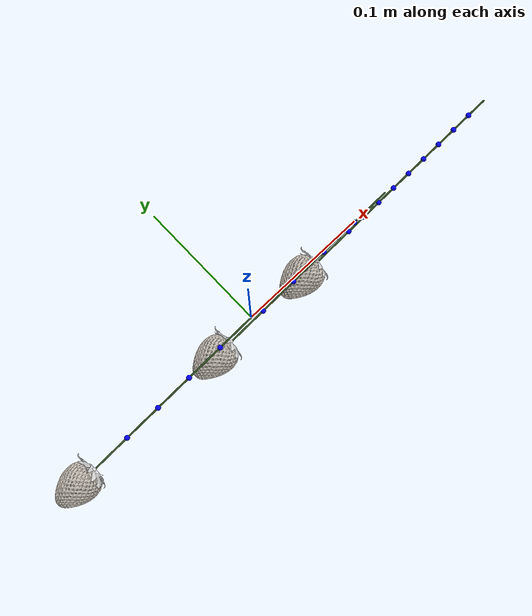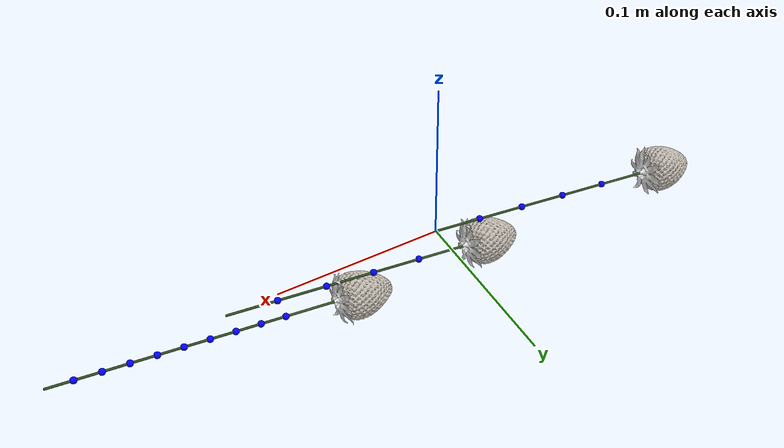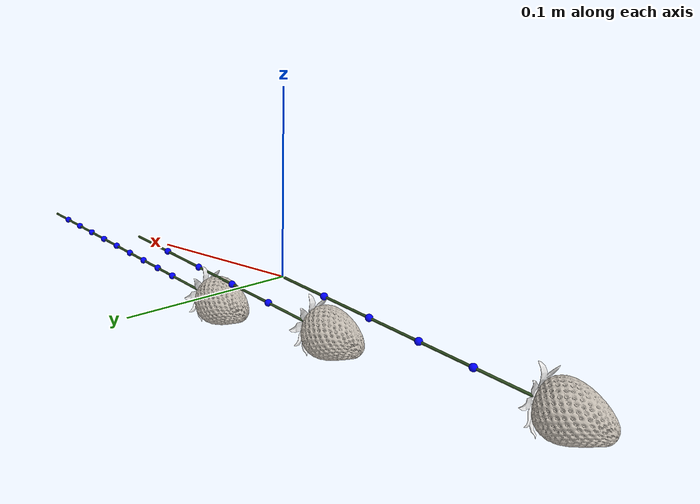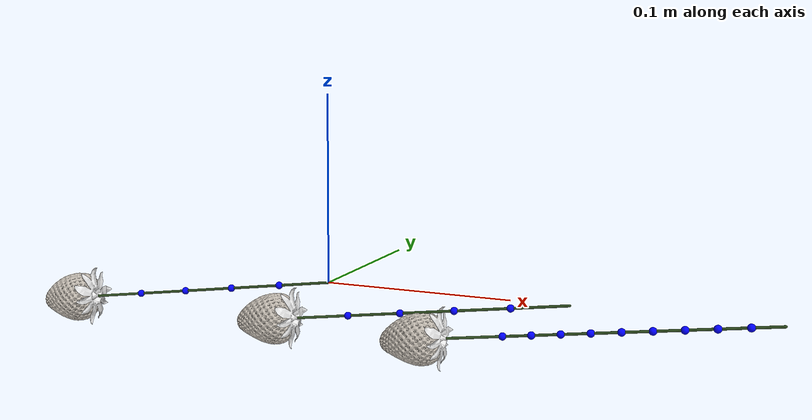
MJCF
<mujoco model="strawb_vine">
  <compiler angle="radian" meshdir="assets/"/>

  <asset>
    <texture name="strawb_leaves" type="2d" file="textures/strawberry_leaves_512.png"/>
    <texture name="strawb_texture" type="2d" file="textures/strawberry_fixed_512.png"/>
    <material name="strawberry_material" texture="strawb_texture" shininess="0.01" specular="0.01" reflectance="0.05" texuniform="true"/>
    <material name="strawberry_leaves" texture="strawb_leaves" shininess="0.1" specular="0.1" reflectance="0.5" texuniform="true"/>
    <mesh name="strawberry" file="strawberry_origin.obj" scale="1.0 1.0 1.0"/>
    <mesh name="strawberry_leaves" file="strawberry_leaves_origin.obj" scale="1.0 1.0 1.0"/>
    <mesh name="strawberry_collision" file="strawberry_collision_origin.obj" scale="1.0 1.0 1.0"/>
  </asset>

  <default>
    <default class="vine_joint">
      <joint type="ball" stiffness="0.02" armature="0.0001" damping="0.01" actuatorfrclimited="false" group="3"/>
    </default>
    <default class="vine_joint_old">
      <joint type="ball" actuatorfrclimited="false" group="3"/>
    </default>
    <default class="vine_capsule">
      <geom type="capsule" mass="0.0001"
            solref="0.001 1" solimp="0.97 0.995 0.0005 0.5 2"
            rgba="0.18 0.3 0.12 1"/>
    </default>

  </default>

  <worldbody>
    <body name="vine1" pos="0.0 0 0" euler="0 3.0 0">
      <body name="aB_first">
        <geom class="vine_capsule" name="aG0" size="0.0007 0.015" pos="0.015 0 0" quat="0.707107 0 -0.707107 0"/>
        <site name="aS_first" pos="0 0 0" group="3"/>
        <body name="aB_1" pos="0.03 0 0">
          <joint class="vine_joint_old" name="aJ_1" pos="0 0 0"/>
          <site name="joint_1" pos="0 0 0" rgba = "0 0 1 1" size="0.002"/>
          <geom class="vine_capsule" name="aG1" size="0.0007 0.015" pos="0.015 0 0" quat="0.707107 0 -0.707107 0"/>
          <body name="aB_2" pos="0.03 0 0">
            <joint class="vine_joint_old" name="aJ_2" pos="0 0 0"/>
            <site name="joint_2" pos="0 0 0" rgba = "0 0 1 1" size="0.002"/>
            <geom class="vine_capsule" name="aG2" size="0.0007 0.015" pos="0.015 0 0" quat="0.707107 0 -0.707107 0"/>
            <body name="aB_last" pos="0.03 0 0">
              <joint class="vine_joint_old" name="aJ_last" pos="0 0 0"/>
              <site name="joint_last" pos="0 0 0" rgba = "0 0 1 1" size="0.002"/>
              <geom class="vine_capsule" name="aG3" size="0.0007 0.015" pos="0.015 0 0" quat="0.707107 0 -0.707107 0"/>
              <site name="aS_last" pos="0.03 0 0" group="3"/>
              <body name="stem1" pos="0.03 0 0">
                <joint class="vine_joint_old" name="stem1" pos="0 0 0"/>
                <site name="joint_stem1" pos="0 0 0" rgba = "0 0 1 1" size="0.002"/>
                <geom name="stem1" type="capsule" size="0.0007 0.015" pos="0.015 0 0" quat="0.707107 0 -0.707107 0" rgba="0.208 0.337 0.149 1"/>
                <site name="stem1" pos="0.0001 0.054 -0.0004" size="0.0012" rgba="0 0 1 1" group="3"/>
                <body name="block1" pos="0.03 0 0" euler="0 0 1.57">
                  <geom name="block1" type="mesh" mesh="strawberry_collision" density="400" group="3"/>
                  <geom name="block1_visual" type="mesh" mesh="strawberry" material="strawberry_material" contype="0" conaffinity="0"/>
                  <geom name="leaves1" type="mesh" mesh="strawberry_leaves" rgba="0.9 0.9 0.9 1.0" material="strawberry_leaves" contype="0" conaffinity="0"/>
                </body>
              </body>
            </body>
          </body>
        </body>
      </body>
    </body>

    <body name="vine2" pos="0.13 0 0" euler="0 3.0 0">
      <body name="bB_first">
        <geom class="vine_capsule" name="bG0" size="0.0007 0.015" pos="0.015 0 0" quat="0.707107 0 -0.707107 0"/>
        <site name="bS_first" pos="0 0 0" group="3"/>
        <body name="bB_1" pos="0.03 0 0">
          <joint class="vine_joint" name="bJ_1" pos="0 0 0"/>
          <site name="joint_2_1" pos="0 0 0" rgba = "0 0 1 1" size="0.002"/>
          <geom class="vine_capsule" name="bG1" size="0.0007 0.015" pos="0.015 0 0" quat="0.707107 0 -0.707107 0"/>
          <body name="bB_2" pos="0.03 0 0">
            <joint class="vine_joint" name="bJ_2" pos="0 0 0"/>
            <site name="joint_2_2" pos="0 0 0" rgba = "0 0 1 1" size="0.002"/>
            <geom class="vine_capsule" name="bG2" size="0.0007 0.015" pos="0.015 0 0" quat="0.707107 0 -0.707107 0"/>
            <body name="bB_last" pos="0.03 0 0">
              <joint class="vine_joint" name="bJ_last" pos="0 0 0"/>
              <site name="joint_2_last" pos="0 0 0" rgba = "0 0 1 1" size="0.002"/>
              <geom class="vine_capsule" name="bG3" size="0.0007 0.015" pos="0.015 0 0" quat="0.707107 0 -0.707107 0"/>
              <site name="bS_last" pos="0.03 0 0" group="3"/>
              <body name="stem2" pos="0.03 0 0">
                <joint class="vine_joint" name="stem2" pos="0 0 0"/>
                <site name="joint_stem2" pos="0 0 0" rgba = "0 0 1 1" size="0.002"/>
                <geom name="stem2" type="capsule" size="0.0007 0.015" pos="0.015 0 0" quat="0.707107 0 -0.707107 0" rgba="0.208 0.337 0.149 1"/>
                <site name="stem2" pos="0.0001 0.054 -0.0004" size="0.0012" rgba="0 0 1 1" group="3"/>
                <body name="block2" pos="0.03 0 0" euler="0 0 1.57">
                  <geom name="block2" type="mesh" mesh="strawberry_collision" density="400" group="3"/>
                  <geom name="block2_visual" type="mesh" mesh="strawberry" material="strawberry_material" contype="0" conaffinity="0"/>
                  <geom name="leaves2" type="mesh" mesh="strawberry_leaves" rgba="0.9 0.9 0.9 1.0" material="strawberry_leaves" contype="0" conaffinity="0"/>
                </body>
              </body>
            </body>
          </body>
        </body>
      </body>
    </body>

    <body name="vine3" pos="0.23 0 0" euler="0 3.0 0">
      <body name="cB_first">
        <!-- radius unchanged (0.0007), half-length halved (0.0075) -->
        <geom class="vine_capsule" name="cG0" size="0.0007 0.0075" pos="0.0075 0 0" quat="0.707107 0 -0.707107 0"/>
        <site name="cS_first" pos="0 0 0" group="3"/>

        <!-- Link 1 -->
        <body name="cB_1" pos="0.015 0 0">
          <joint class="vine_joint" name="cJ_1" pos="0 0 0"/>
          <site name="joint_3_1" pos="0 0 0" rgba="0 0 1 1" size="0.002"/>
          <geom class="vine_capsule" name="cG1" size="0.0007 0.0075" pos="0.0075 0 0" quat="0.707107 0 -0.707107 0"/>

          <!-- Link 2 -->
          <body name="cB_2" pos="0.015 0 0">
            <joint class="vine_joint" name="cJ_2" pos="0 0 0"/>
            <site name="joint_3_2" pos="0 0 0" rgba="0 0 1 1" size="0.002"/>
            <geom class="vine_capsule" name="cG2" size="0.0007 0.0075" pos="0.0075 0 0" quat="0.707107 0 -0.707107 0"/>

            <!-- Link 3 -->
            <body name="cB_3" pos="0.015 0 0">
              <joint class="vine_joint" name="cJ_3" pos="0 0 0"/>
              <site name="joint_3_3" pos="0 0 0" rgba="0 0 1 1" size="0.002"/>
              <geom class="vine_capsule" name="cG3" size="0.0007 0.0075" pos="0.0075 0 0" quat="0.707107 0 -0.707107 0"/>

              <!-- Link 4 -->
              <body name="cB_4" pos="0.015 0 0">
                <joint class="vine_joint" name="cJ_4" pos="0 0 0"/>
                <site name="joint_3_4" pos="0 0 0" rgba="0 0 1 1" size="0.002"/>
                <geom class="vine_capsule" name="cG4" size="0.0007 0.0075" pos="0.0075 0 0" quat="0.707107 0 -0.707107 0"/>

                <!-- Link 5 -->
                <body name="cB_5" pos="0.015 0 0">
                  <joint class="vine_joint" name="cJ_5" pos="0 0 0"/>
                  <site name="joint_3_5" pos="0 0 0" rgba="0 0 1 1" size="0.002"/>
                  <geom class="vine_capsule" name="cG5" size="0.0007 0.0075" pos="0.0075 0 0" quat="0.707107 0 -0.707107 0"/>

                  <!-- Link 6 -->
                  <body name="cB_6" pos="0.015 0 0">
                    <joint class="vine_joint" name="cJ_6" pos="0 0 0"/>
                    <site name="joint_3_6" pos="0 0 0" rgba="0 0 1 1" size="0.002"/>
                    <geom class="vine_capsule" name="cG6" size="0.0007 0.0075" pos="0.0075 0 0" quat="0.707107 0 -0.707107 0"/>

                    <!-- Link 7 -->
                    <body name="cB_7" pos="0.015 0 0">
                      <joint class="vine_joint" name="cJ_7" pos="0 0 0"/>
                      <site name="joint_3_7" pos="0 0 0" rgba="0 0 1 1" size="0.002"/>
                      <geom class="vine_capsule" name="cG7" size="0.0007 0.0075" pos="0.0075 0 0" quat="0.707107 0 -0.707107 0"/>

                      <!-- Link 8 (last) -->
                      <body name="cB_last" pos="0.015 0 0">
                        <joint class="vine_joint" name="cJ_last" pos="0 0 0"/>
                        <site name="joint_3_last" pos="0 0 0" rgba="0 0 1 1" size="0.002"/>
                        <geom class="vine_capsule" name="cG8" size="0.0007 0.0075" pos="0.0075 0 0" quat="0.707107 0 -0.707107 0"/>
                        <site name="cS_last" pos="0.03 0 0" group="3"/>

                        <!-- Stem and fruit unchanged -->
                        <body name="stem3" pos="0.015 0 0">
                          <joint class="vine_joint" name="stem3" pos="0 0 0"/>
                          <site name="joint_stem3" pos="0 0 0" rgba="0 0 1 1" size="0.002"/>
                          <geom name="stem3" type="capsule" size="0.0007 0.015" pos="0.015 0 0" quat="0.707107 0 -0.707107 0" rgba="0.208 0.337 0.149 1"/>
                          <site name="stem3" pos="0.0001 0.054 -0.0004" size="0.0012" rgba="0 0 1 1" group="3"/>
                          <body name="block3" pos="0.03 0 0" euler="0 0 1.57">
                            <geom name="block3" type="mesh" mesh="strawberry_collision" density="400" group="3"/>
                            <geom name="block3_visual" type="mesh" mesh="strawberry" material="strawberry_material" contype="0" conaffinity="0"/>
                            <geom name="leaves3" type="mesh" mesh="strawberry_leaves" rgba="0.9 0.9 0.9 1.0" material="strawberry_leaves" contype="0" conaffinity="0"/>
                          </body>
                        </body>

                      </body>
                    </body>
                  </body>
                </body>
              </body>
            </body>
          </body>
        </body>
      </body>
    </body>

  </worldbody>

</mujoco>
